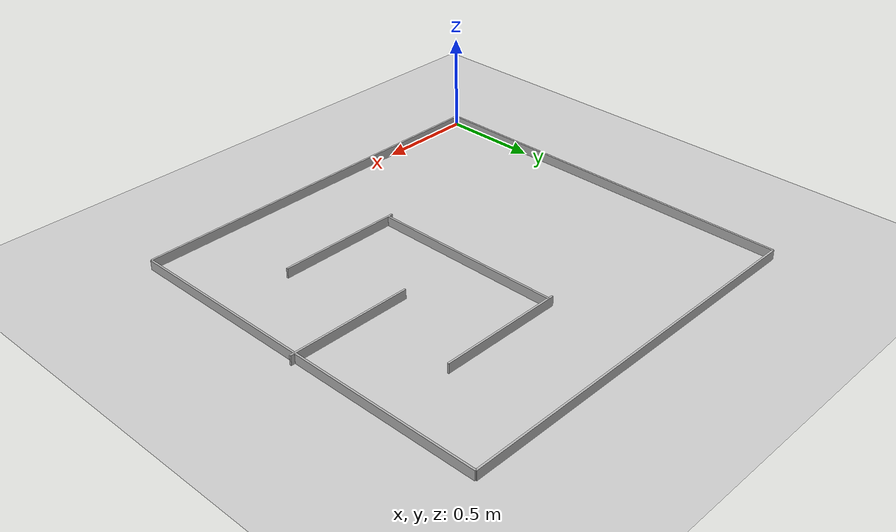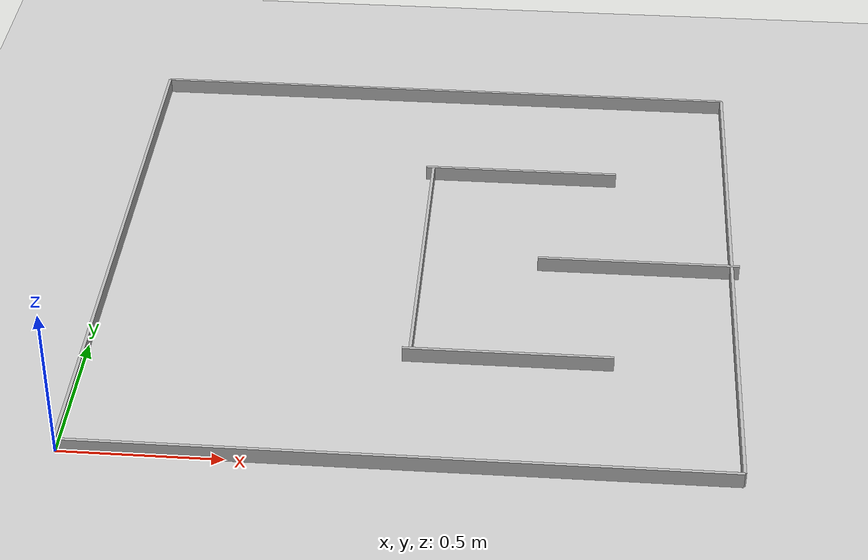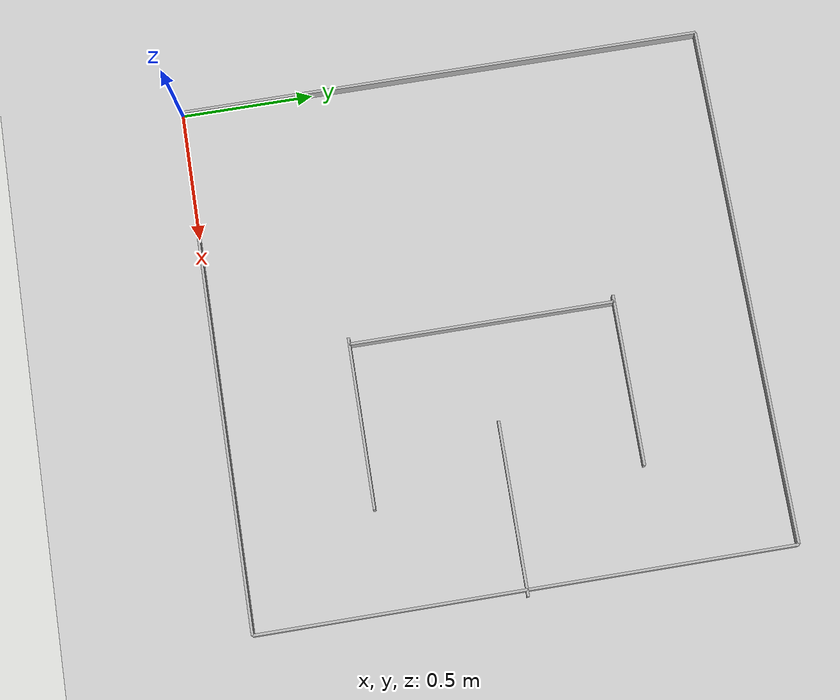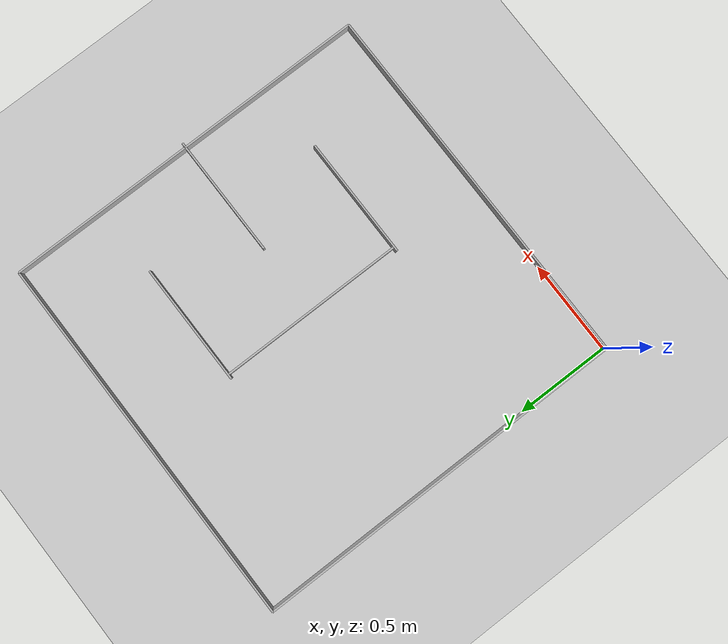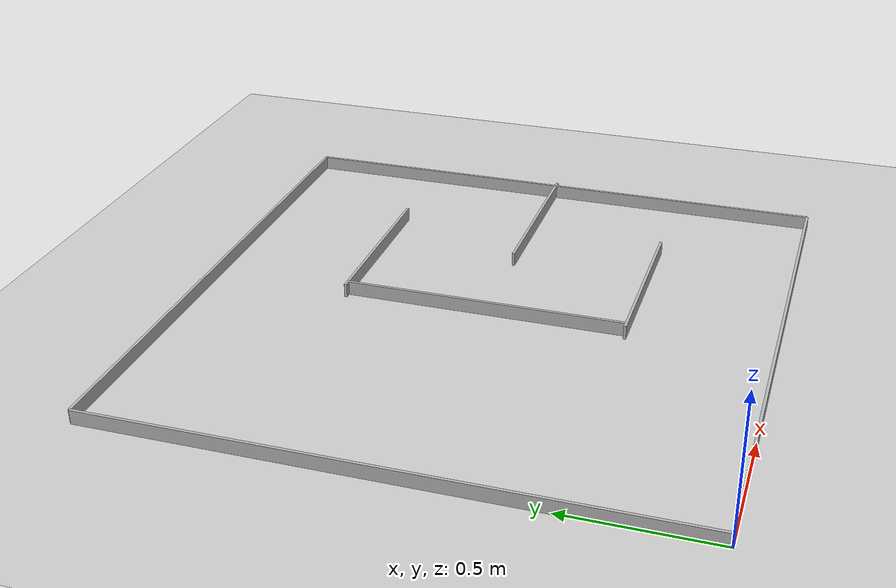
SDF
<?xml version="1.0" ?>
<sdf version="1.6">
  <world name="default">
    <physics type="ode">
      <gravity>0 0 -9.8</gravity>
      <ode>
        <solver>
          <type>quick</type>
          <iters>20</iters>
          <sor>1.0</sor>
        </solver>
        <constraints>
          <cfm>0.0</cfm>
          <erp>0.2</erp>
          <contact_max_correcting_vel>100.0</contact_max_correcting_vel>
          <contact_surface_layer>0.0</contact_surface_layer>
        </constraints>
      </ode>
      <max_step_size>0.001</max_step_size>
    </physics>
    <!-- A global light source -->
    <include>
      <uri>model://sun</uri>
    </include>
    <!-- A ground plane -->
    <include>
      <uri>model://ground_plane</uri>
    </include>

    <!-- A Wall -->
    <model name='wall_00'>
      <static>1</static>
      <link name='link'>
        <visual name='visual'>
          <geometry>
            <box>
              <size>2.0  0.01  0.05</size>
            </box>
          </geometry>
        </visual>
        <self_collide>0</self_collide>
        <kinematic>0</kinematic>
        <collision name='surface'>
          <pose frame=''>0 0 0 0 0 0</pose>
          <geometry>
            <box>
              <size>2.0  0.01  0.05</size>
            </box>
          </geometry>
          <surface>
            <friction>
              <ode>
                <mu>0.6</mu>
                <mu2>0.6</mu2>
              </ode>
              <torsional>
                <ode/>
              </torsional>
            </friction>
            <contact>
              <ode/>
            </contact>
            <bounce/>
          </surface>
          <max_contacts>10</max_contacts>
        </collision>
      </link>
      <pose frame=''>1.0 0.0 0.025000 0 0 0.000000</pose>
    </model>

    <!-- A Wall -->
    <model name='wall_01'>
      <static>1</static>
      <link name='link'>
        <visual name='visual'>
          <geometry>
            <box>
              <size>2.0  0.01  0.05</size>
            </box>
          </geometry>
        </visual>
        <self_collide>0</self_collide>
        <kinematic>0</kinematic>
        <collision name='surface'>
          <pose frame=''>0 0 0 0 0 0</pose>
          <geometry>
            <box>
              <size>2.0  0.01  0.05</size>
            </box>
          </geometry>
          <surface>
            <friction>
              <ode>
                <mu>0.6</mu>
                <mu2>0.6</mu2>
              </ode>
              <torsional>
                <ode/>
              </torsional>
            </friction>
            <contact>
              <ode/>
            </contact>
            <bounce/>
          </surface>
          <max_contacts>10</max_contacts>
        </collision>
      </link>
      <pose frame=''>0.0 1.0 0.025000 0 0 1.570796</pose>
    </model>

    <!-- A Wall -->
    <model name='wall_02'>
      <static>1</static>
      <link name='link'>
        <visual name='visual'>
          <geometry>
            <box>
              <size>2.0  0.01  0.05</size>
            </box>
          </geometry>
        </visual>
        <self_collide>0</self_collide>
        <kinematic>0</kinematic>
        <collision name='surface'>
          <pose frame=''>0 0 0 0 0 0</pose>
          <geometry>
            <box>
              <size>2.0  0.01  0.05</size>
            </box>
          </geometry>
          <surface>
            <friction>
              <ode>
                <mu>0.6</mu>
                <mu2>0.6</mu2>
              </ode>
              <torsional>
                <ode/>
              </torsional>
            </friction>
            <contact>
              <ode/>
            </contact>
            <bounce/>
          </surface>
          <max_contacts>10</max_contacts>
        </collision>
      </link>
      <pose frame=''>2.0 1.0 0.025000 0 0 1.570796</pose>
    </model>

    <!-- A Wall -->
    <model name='wall_03'>
      <static>1</static>
      <link name='link'>
        <visual name='visual'>
          <geometry>
            <box>
              <size>2.0  0.01  0.05</size>
            </box>
          </geometry>
        </visual>
        <self_collide>0</self_collide>
        <kinematic>0</kinematic>
        <collision name='surface'>
          <pose frame=''>0 0 0 0 0 0</pose>
          <geometry>
            <box>
              <size>2.0  0.01  0.05</size>
            </box>
          </geometry>
          <surface>
            <friction>
              <ode>
                <mu>0.6</mu>
                <mu2>0.6</mu2>
              </ode>
              <torsional>
                <ode/>
              </torsional>
            </friction>
            <contact>
              <ode/>
            </contact>
            <bounce/>
          </surface>
          <max_contacts>10</max_contacts>
        </collision>
      </link>
      <pose frame=''>1.0 2.0 0.025000 0 0 0.000000</pose>
    </model>

    <!-- A Wall -->
    <model name='wall_04'>
      <static>1</static>
      <link name='link'>
        <visual name='visual'>
          <geometry>
            <box>
              <size>1.0  0.01  0.05</size>
            </box>
          </geometry>
        </visual>
        <self_collide>0</self_collide>
        <kinematic>0</kinematic>
        <collision name='surface'>
          <pose frame=''>0 0 0 0 0 0</pose>
          <geometry>
            <box>
              <size>1.0  0.01  0.05</size>
            </box>
          </geometry>
          <surface>
            <friction>
              <ode>
                <mu>0.6</mu>
                <mu2>0.6</mu2>
              </ode>
              <torsional>
                <ode/>
              </torsional>
            </friction>
            <contact>
              <ode/>
            </contact>
            <bounce/>
          </surface>
          <max_contacts>10</max_contacts>
        </collision>
      </link>
      <pose frame=''>1.0 1.0 0.025000 0 0 1.570796</pose>
    </model>

    <!-- A Wall -->
    <model name='wall_05'>
      <static>1</static>
      <link name='link'>
        <visual name='visual'>
          <geometry>
            <box>
              <size>0.65  0.01  0.05</size>
            </box>
          </geometry>
        </visual>
        <self_collide>0</self_collide>
        <kinematic>0</kinematic>
        <collision name='surface'>
          <pose frame=''>0 0 0 0 0 0</pose>
          <geometry>
            <box>
              <size>0.65  0.01  0.05</size>
            </box>
          </geometry>
          <surface>
            <friction>
              <ode>
                <mu>0.6</mu>
                <mu2>0.6</mu2>
              </ode>
              <torsional>
                <ode/>
              </torsional>
            </friction>
            <contact>
              <ode/>
            </contact>
            <bounce/>
          </surface>
          <max_contacts>10</max_contacts>
        </collision>
      </link>
      <pose frame=''>1.3 0.5 0.025000 0 0 0.000000</pose>
    </model>

    <!-- A Wall -->
    <model name='wall_06'>
      <static>1</static>
      <link name='link'>
        <visual name='visual'>
          <geometry>
            <box>
              <size>0.65  0.01  0.05</size>
            </box>
          </geometry>
        </visual>
        <self_collide>0</self_collide>
        <kinematic>0</kinematic>
        <collision name='surface'>
          <pose frame=''>0 0 0 0 0 0</pose>
          <geometry>
            <box>
              <size>0.65  0.01  0.05</size>
            </box>
          </geometry>
          <surface>
            <friction>
              <ode>
                <mu>0.6</mu>
                <mu2>0.6</mu2>
              </ode>
              <torsional>
                <ode/>
              </torsional>
            </friction>
            <contact>
              <ode/>
            </contact>
            <bounce/>
          </surface>
          <max_contacts>10</max_contacts>
        </collision>
      </link>
      <pose frame=''>1.3 1.5 0.025000 0 0 0.000000</pose>
    </model>

    <!-- A Wall -->
    <model name='wall_07'>
      <static>1</static>
      <link name='link'>
        <visual name='visual'>
          <geometry>
            <box>
              <size>0.65  0.01  0.05</size>
            </box>
          </geometry>
        </visual>
        <self_collide>0</self_collide>
        <kinematic>0</kinematic>
        <collision name='surface'>
          <pose frame=''>0 0 0 0 0 0</pose>
          <geometry>
            <box>
              <size>0.65  0.01  0.05</size>
            </box>
          </geometry>
          <surface>
            <friction>
              <ode>
                <mu>0.6</mu>
                <mu2>0.6</mu2>
              </ode>
              <torsional>
                <ode/>
              </torsional>
            </friction>
            <contact>
              <ode/>
            </contact>
            <bounce/>
          </surface>
          <max_contacts>10</max_contacts>
        </collision>
      </link>
      <pose frame=''>1.7 1.0 0.025000 0 0 0.000000</pose>
    </model>

  </world>
</sdf>
